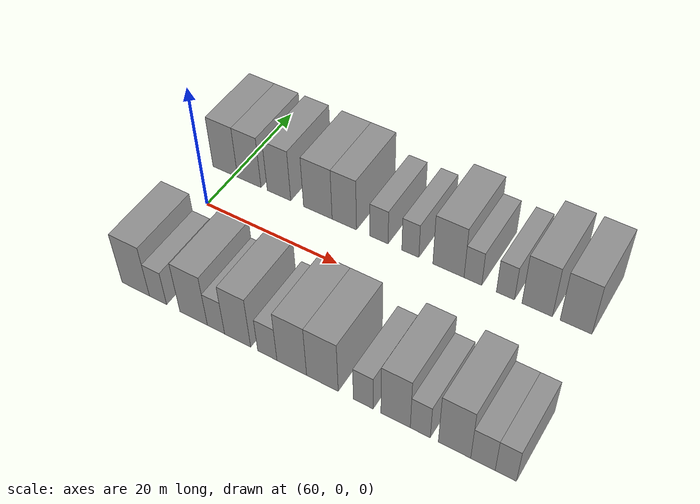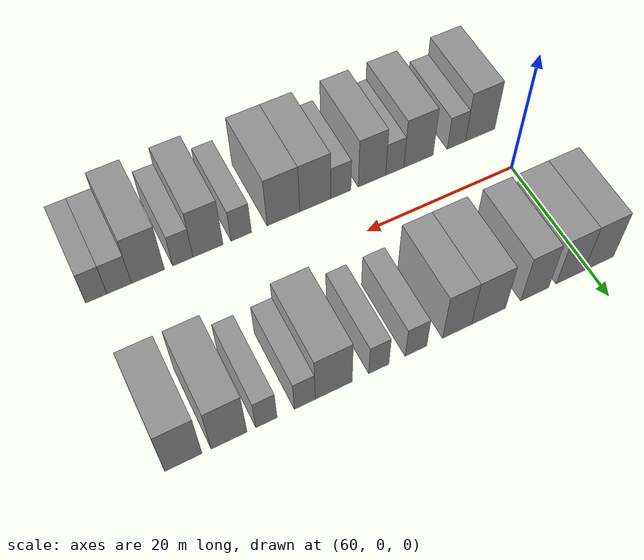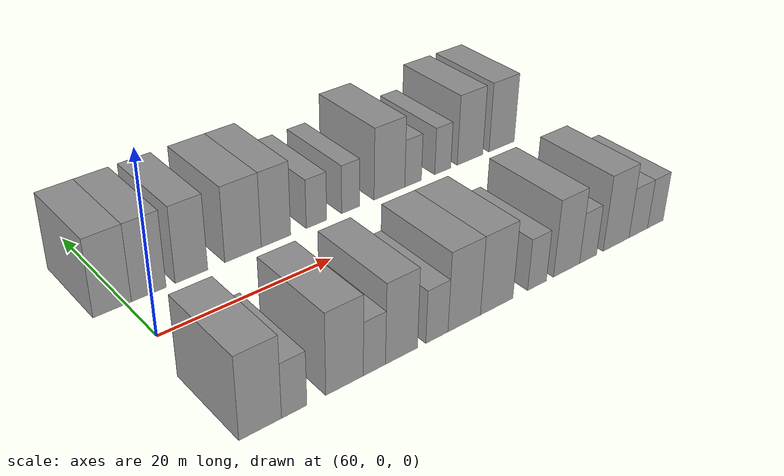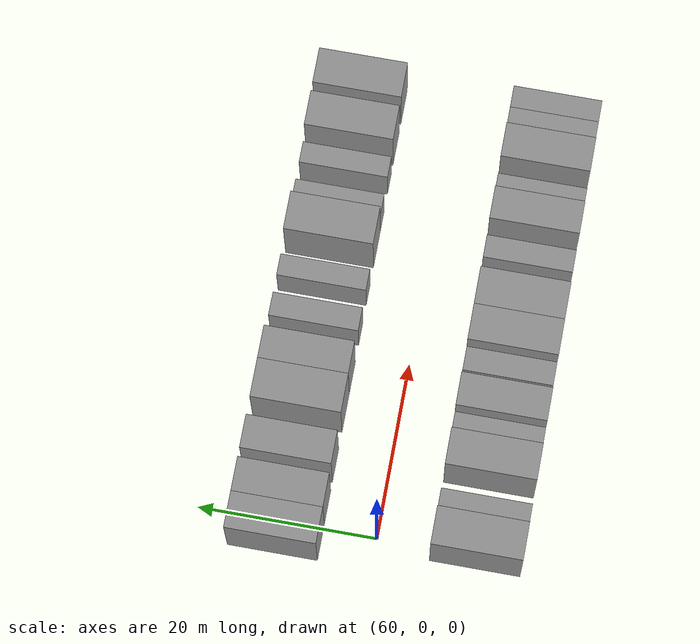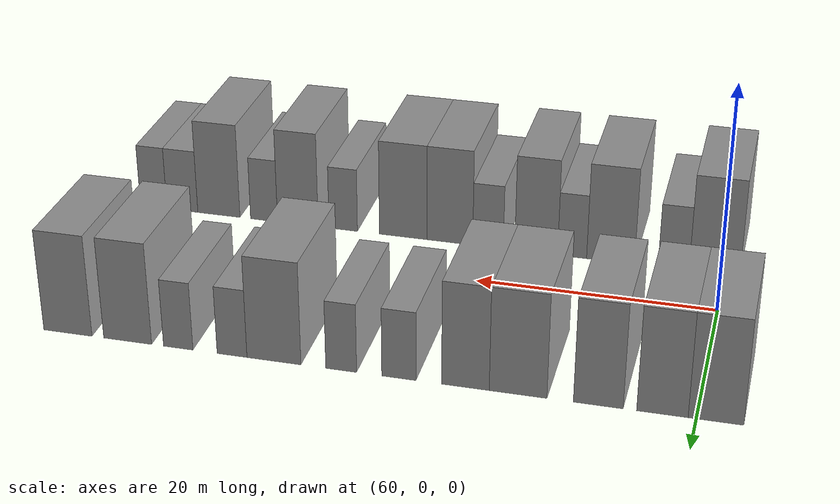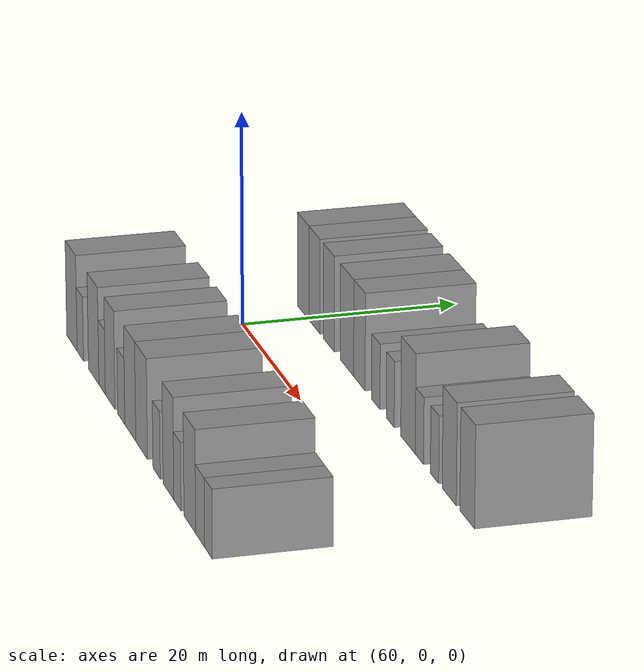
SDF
<sdf version="1.6">
 <world name="default">
  <model name="building_14">
   <static>1</static>
   <pose>58.5556 11.0000 0 0.000000 0.000000 1.570796</pose>
   <link name="link">
    <pose>0 0 4.50 0 0 0</pose>
    <collision name="collision"><geometry><box><size>10.0000 4.0664 9.0000</size></box></geometry></collision>
    <visual name="visual">
     <cast_shadows>0</cast_shadows>
     <geometry><box><size>10.0000 4.0664 9.0000</size></box></geometry>
     <material>
      <script>
       <uri>model://grey_wall/materials/scripts</uri>
       <uri>model://grey_wall/materials/textures</uri>
       <name>vrc/grey_wall</name>
      </script>
     </material>
    </visual>
   </link>
  </model>
  <model name="building_15">
   <static>1</static>
   <pose>62.4908 11.0000 0 0.000000 0.000000 1.570796</pose>
   <link name="link">
    <pose>0 0 4.50 0 0 0</pose>
    <collision name="collision"><geometry><box><size>10.0000 3.8040 9.0000</size></box></geometry></collision>
    <visual name="visual">
     <cast_shadows>0</cast_shadows>
     <geometry><box><size>10.0000 3.8040 9.0000</size></box></geometry>
     <material>
      <script>
       <uri>model://grey_wall/materials/scripts</uri>
       <uri>model://grey_wall/materials/textures</uri>
       <name>vrc/grey_wall</name>
      </script>
     </material>
    </visual>
   </link>
  </model>
  <model name="building_16">
   <static>1</static>
   <pose>67.2608 11.0000 0 0.000000 0.000000 1.570796</pose>
   <link name="link">
    <pose>0 0 4.50 0 0 0</pose>
    <collision name="collision"><geometry><box><size>10.0000 3.7361 9.0000</size></box></geometry></collision>
    <visual name="visual">
     <cast_shadows>0</cast_shadows>
     <geometry><box><size>10.0000 3.7361 9.0000</size></box></geometry>
     <material>
      <script>
       <uri>model://grey_wall/materials/scripts</uri>
       <uri>model://grey_wall/materials/textures</uri>
       <name>vrc/grey_wall</name>
      </script>
     </material>
    </visual>
   </link>
  </model>
  <model name="building_17">
   <static>1</static>
   <pose>73.3346 11.0000 0 0.000000 0.000000 1.570796</pose>
   <link name="link">
    <pose>0 0 4.50 0 0 0</pose>
    <collision name="collision"><geometry><box><size>10.0000 4.4116 9.0000</size></box></geometry></collision>
    <visual name="visual">
     <cast_shadows>0</cast_shadows>
     <geometry><box><size>10.0000 4.4116 9.0000</size></box></geometry>
     <material>
      <script>
       <uri>model://grey_wall/materials/scripts</uri>
       <uri>model://grey_wall/materials/textures</uri>
       <name>vrc/grey_wall</name>
      </script>
     </material>
    </visual>
   </link>
  </model>
  <model name="building_18">
   <static>1</static>
   <pose>77.3870 11.0000 0 0.000000 0.000000 1.570796</pose>
   <link name="link">
    <pose>0 0 4.50 0 0 0</pose>
    <collision name="collision"><geometry><box><size>10.0000 3.6932 9.0000</size></box></geometry></collision>
    <visual name="visual">
     <cast_shadows>0</cast_shadows>
     <geometry><box><size>10.0000 3.6932 9.0000</size></box></geometry>
     <material>
      <script>
       <uri>model://grey_wall/materials/scripts</uri>
       <uri>model://grey_wall/materials/textures</uri>
       <name>vrc/grey_wall</name>
      </script>
     </material>
    </visual>
   </link>
  </model>
  <model name="building_19">
   <static>1</static>
   <pose>82.5772 11.0000 0 0.000000 0.000000 1.570796</pose>
   <link name="link">
    <pose>0 0 3.00 0 0 0</pose>
    <collision name="collision"><geometry><box><size>10.0000 2.6872 6.0000</size></box></geometry></collision>
    <visual name="visual">
     <cast_shadows>0</cast_shadows>
     <geometry><box><size>10.0000 2.6872 6.0000</size></box></geometry>
     <material>
      <script>
       <uri>model://grey_wall/materials/scripts</uri>
       <uri>model://grey_wall/materials/textures</uri>
       <name>vrc/grey_wall</name>
      </script>
     </material>
    </visual>
   </link>
  </model>
  <model name="building_20">
   <static>1</static>
   <pose>87.1497 11.0000 0 0.000000 0.000000 1.570796</pose>
   <link name="link">
    <pose>0 0 3.00 0 0 0</pose>
    <collision name="collision"><geometry><box><size>10.0000 2.4577 6.0000</size></box></geometry></collision>
    <visual name="visual">
     <cast_shadows>0</cast_shadows>
     <geometry><box><size>10.0000 2.4577 6.0000</size></box></geometry>
     <material>
      <script>
       <uri>model://grey_wall/materials/scripts</uri>
       <uri>model://grey_wall/materials/textures</uri>
       <name>vrc/grey_wall</name>
      </script>
     </material>
    </visual>
   </link>
  </model>
  <model name="building_21">
   <static>1</static>
   <pose>92.5695 11.0000 0 0.000000 0.000000 1.570796</pose>
   <link name="link">
    <pose>0 0 4.50 0 0 0</pose>
    <collision name="collision"><geometry><box><size>10.0000 4.3818 9.0000</size></box></geometry></collision>
    <visual name="visual">
     <cast_shadows>0</cast_shadows>
     <geometry><box><size>10.0000 4.3818 9.0000</size></box></geometry>
     <material>
      <script>
       <uri>model://grey_wall/materials/scripts</uri>
       <uri>model://grey_wall/materials/textures</uri>
       <name>vrc/grey_wall</name>
      </script>
     </material>
    </visual>
   </link>
  </model>
  <model name="building_22">
   <static>1</static>
   <pose>95.9836 11.0000 0 0.000000 0.000000 1.570796</pose>
   <link name="link">
    <pose>0 0 3.00 0 0 0</pose>
    <collision name="collision"><geometry><box><size>10.0000 2.4465 6.0000</size></box></geometry></collision>
    <visual name="visual">
     <cast_shadows>0</cast_shadows>
     <geometry><box><size>10.0000 2.4465 6.0000</size></box></geometry>
     <material>
      <script>
       <uri>model://grey_wall/materials/scripts</uri>
       <uri>model://grey_wall/materials/textures</uri>
       <name>vrc/grey_wall</name>
      </script>
     </material>
    </visual>
   </link>
  </model>
  <model name="building_23">
   <static>1</static>
   <pose>100.4280 11.0000 0 0.000000 0.000000 1.570796</pose>
   <link name="link">
    <pose>0 0 3.00 0 0 0</pose>
    <collision name="collision"><geometry><box><size>10.0000 2.4423 6.0000</size></box></geometry></collision>
    <visual name="visual">
     <cast_shadows>0</cast_shadows>
     <geometry><box><size>10.0000 2.4423 6.0000</size></box></geometry>
     <material>
      <script>
       <uri>model://grey_wall/materials/scripts</uri>
       <uri>model://grey_wall/materials/textures</uri>
       <name>vrc/grey_wall</name>
      </script>
     </material>
    </visual>
   </link>
  </model>
  <model name="building_24">
   <static>1</static>
   <pose>104.6647 11.0000 0 0.000000 0.000000 1.570796</pose>
   <link name="link">
    <pose>0 0 4.50 0 0 0</pose>
    <collision name="collision"><geometry><box><size>10.0000 4.0310 9.0000</size></box></geometry></collision>
    <visual name="visual">
     <cast_shadows>0</cast_shadows>
     <geometry><box><size>10.0000 4.0310 9.0000</size></box></geometry>
     <material>
      <script>
       <uri>model://grey_wall/materials/scripts</uri>
       <uri>model://grey_wall/materials/textures</uri>
       <name>vrc/grey_wall</name>
      </script>
     </material>
    </visual>
   </link>
  </model>
  <model name="building_25">
   <static>1</static>
   <pose>109.7369 11.0000 0 0.000000 0.000000 1.570796</pose>
   <link name="link">
    <pose>0 0 4.50 0 0 0</pose>
    <collision name="collision"><geometry><box><size>10.0000 4.1134 9.0000</size></box></geometry></collision>
    <visual name="visual">
     <cast_shadows>0</cast_shadows>
     <geometry><box><size>10.0000 4.1134 9.0000</size></box></geometry>
     <material>
      <script>
       <uri>model://grey_wall/materials/scripts</uri>
       <uri>model://grey_wall/materials/textures</uri>
       <name>vrc/grey_wall</name>
      </script>
     </material>
    </visual>
   </link>
  </model>
  <model name="building_62">
   <static>1</static>
   <pose>60.8336 -11.0000 0 0.000000 0.000000 1.570796</pose>
   <link name="link">
    <pose>0 0 4.50 0 0 0</pose>
    <collision name="collision"><geometry><box><size>10.0000 4.2587 9.0000</size></box></geometry></collision>
    <visual name="visual">
     <cast_shadows>0</cast_shadows>
     <geometry><box><size>10.0000 4.2587 9.0000</size></box></geometry>
     <material>
      <script>
       <uri>model://grey_wall/materials/scripts</uri>
       <uri>model://grey_wall/materials/textures</uri>
       <name>vrc/grey_wall</name>
      </script>
     </material>
    </visual>
   </link>
  </model>
  <model name="building_63">
   <static>1</static>
   <pose>64.2730 -11.0000 0 0.000000 0.000000 1.570796</pose>
   <link name="link">
    <pose>0 0 3.00 0 0 0</pose>
    <collision name="collision"><geometry><box><size>10.0000 2.6202 6.0000</size></box></geometry></collision>
    <visual name="visual">
     <cast_shadows>0</cast_shadows>
     <geometry><box><size>10.0000 2.6202 6.0000</size></box></geometry>
     <material>
      <script>
       <uri>model://grey_wall/materials/scripts</uri>
       <uri>model://grey_wall/materials/textures</uri>
       <name>vrc/grey_wall</name>
      </script>
     </material>
    </visual>
   </link>
  </model>
  <model name="building_64">
   <static>1</static>
   <pose>69.6367 -11.0000 0 0.000000 0.000000 1.570796</pose>
   <link name="link">
    <pose>0 0 4.50 0 0 0</pose>
    <collision name="collision"><geometry><box><size>10.0000 4.1071 9.0000</size></box></geometry></collision>
    <visual name="visual">
     <cast_shadows>0</cast_shadows>
     <geometry><box><size>10.0000 4.1071 9.0000</size></box></geometry>
     <material>
      <script>
       <uri>model://grey_wall/materials/scripts</uri>
       <uri>model://grey_wall/materials/textures</uri>
       <name>vrc/grey_wall</name>
      </script>
     </material>
    </visual>
   </link>
  </model>
  <model name="building_65">
   <static>1</static>
   <pose>72.9438 -11.0000 0 0.000000 0.000000 1.570796</pose>
   <link name="link">
    <pose>0 0 3.00 0 0 0</pose>
    <collision name="collision"><geometry><box><size>10.0000 2.5071 6.0000</size></box></geometry></collision>
    <visual name="visual">
     <cast_shadows>0</cast_shadows>
     <geometry><box><size>10.0000 2.5071 6.0000</size></box></geometry>
     <material>
      <script>
       <uri>model://grey_wall/materials/scripts</uri>
       <uri>model://grey_wall/materials/textures</uri>
       <name>vrc/grey_wall</name>
      </script>
     </material>
    </visual>
   </link>
  </model>
  <model name="building_66">
   <static>1</static>
   <pose>76.0719 -11.0000 0 0.000000 0.000000 1.570796</pose>
   <link name="link">
    <pose>0 0 4.50 0 0 0</pose>
    <collision name="collision"><geometry><box><size>10.0000 3.7492 9.0000</size></box></geometry></collision>
    <visual name="visual">
     <cast_shadows>0</cast_shadows>
     <geometry><box><size>10.0000 3.7492 9.0000</size></box></geometry>
     <material>
      <script>
       <uri>model://grey_wall/materials/scripts</uri>
       <uri>model://grey_wall/materials/textures</uri>
       <name>vrc/grey_wall</name>
      </script>
     </material>
    </visual>
   </link>
  </model>
  <model name="building_67">
   <static>1</static>
   <pose>80.2975 -11.0000 0 0.000000 0.000000 1.570796</pose>
   <link name="link">
    <pose>0 0 3.00 0 0 0</pose>
    <collision name="collision"><geometry><box><size>10.0000 2.7019 6.0000</size></box></geometry></collision>
    <visual name="visual">
     <cast_shadows>0</cast_shadows>
     <geometry><box><size>10.0000 2.7019 6.0000</size></box></geometry>
     <material>
      <script>
       <uri>model://grey_wall/materials/scripts</uri>
       <uri>model://grey_wall/materials/textures</uri>
       <name>vrc/grey_wall</name>
      </script>
     </material>
    </visual>
   </link>
  </model>
  <model name="building_68">
   <static>1</static>
   <pose>83.6960 -11.0000 0 0.000000 0.000000 1.570796</pose>
   <link name="link">
    <pose>0 0 4.50 0 0 0</pose>
    <collision name="collision"><geometry><box><size>10.0000 4.0952 9.0000</size></box></geometry></collision>
    <visual name="visual">
     <cast_shadows>0</cast_shadows>
     <geometry><box><size>10.0000 4.0952 9.0000</size></box></geometry>
     <material>
      <script>
       <uri>model://grey_wall/materials/scripts</uri>
       <uri>model://grey_wall/materials/textures</uri>
       <name>vrc/grey_wall</name>
      </script>
     </material>
    </visual>
   </link>
  </model>
  <model name="building_69">
   <static>1</static>
   <pose>87.8811 -11.0000 0 0.000000 0.000000 1.570796</pose>
   <link name="link">
    <pose>0 0 4.50 0 0 0</pose>
    <collision name="collision"><geometry><box><size>10.0000 4.2751 9.0000</size></box></geometry></collision>
    <visual name="visual">
     <cast_shadows>0</cast_shadows>
     <geometry><box><size>10.0000 4.2751 9.0000</size></box></geometry>
     <material>
      <script>
       <uri>model://grey_wall/materials/scripts</uri>
       <uri>model://grey_wall/materials/textures</uri>
       <name>vrc/grey_wall</name>
      </script>
     </material>
    </visual>
   </link>
  </model>
  <model name="building_70">
   <static>1</static>
   <pose>93.3188 -11.0000 0 0.000000 0.000000 1.570796</pose>
   <link name="link">
    <pose>0 0 3.00 0 0 0</pose>
    <collision name="collision"><geometry><box><size>10.0000 2.6002 6.0000</size></box></geometry></collision>
    <visual name="visual">
     <cast_shadows>0</cast_shadows>
     <geometry><box><size>10.0000 2.6002 6.0000</size></box></geometry>
     <material>
      <script>
       <uri>model://grey_wall/materials/scripts</uri>
       <uri>model://grey_wall/materials/textures</uri>
       <name>vrc/grey_wall</name>
      </script>
     </material>
    </visual>
   </link>
  </model>
  <model name="building_71">
   <static>1</static>
   <pose>97.5014 -11.0000 0 0.000000 0.000000 1.570796</pose>
   <link name="link">
    <pose>0 0 4.50 0 0 0</pose>
    <collision name="collision"><geometry><box><size>10.0000 3.7650 9.0000</size></box></geometry></collision>
    <visual name="visual">
     <cast_shadows>0</cast_shadows>
     <geometry><box><size>10.0000 3.7650 9.0000</size></box></geometry>
     <material>
      <script>
       <uri>model://grey_wall/materials/scripts</uri>
       <uri>model://grey_wall/materials/textures</uri>
       <name>vrc/grey_wall</name>
      </script>
     </material>
    </visual>
   </link>
  </model>
  <model name="building_72">
   <static>1</static>
   <pose>100.6396 -11.0000 0 0.000000 0.000000 1.570796</pose>
   <link name="link">
    <pose>0 0 3.00 0 0 0</pose>
    <collision name="collision"><geometry><box><size>10.0000 2.5114 6.0000</size></box></geometry></collision>
    <visual name="visual">
     <cast_shadows>0</cast_shadows>
     <geometry><box><size>10.0000 2.5114 6.0000</size></box></geometry>
     <material>
      <script>
       <uri>model://grey_wall/materials/scripts</uri>
       <uri>model://grey_wall/materials/textures</uri>
       <name>vrc/grey_wall</name>
      </script>
     </material>
    </visual>
   </link>
  </model>
  <model name="building_73">
   <static>1</static>
   <pose>104.8852 -11.0000 0 0.000000 0.000000 1.570796</pose>
   <link name="link">
    <pose>0 0 4.50 0 0 0</pose>
    <collision name="collision"><geometry><box><size>10.0000 3.9797 9.0000</size></box></geometry></collision>
    <visual name="visual">
     <cast_shadows>0</cast_shadows>
     <geometry><box><size>10.0000 3.9797 9.0000</size></box></geometry>
     <material>
      <script>
       <uri>model://grey_wall/materials/scripts</uri>
       <uri>model://grey_wall/materials/textures</uri>
       <name>vrc/grey_wall</name>
      </script>
     </material>
    </visual>
   </link>
  </model>
  <model name="building_74">
   <static>1</static>
   <pose>108.3488 -11.0000 0 0.000000 0.000000 1.570796</pose>
   <link name="link">
    <pose>0 0 3.00 0 0 0</pose>
    <collision name="collision"><geometry><box><size>10.0000 2.9476 6.0000</size></box></geometry></collision>
    <visual name="visual">
     <cast_shadows>0</cast_shadows>
     <geometry><box><size>10.0000 2.9476 6.0000</size></box></geometry>
     <material>
      <script>
       <uri>model://grey_wall/materials/scripts</uri>
       <uri>model://grey_wall/materials/textures</uri>
       <name>vrc/grey_wall</name>
      </script>
     </material>
    </visual>
   </link>
  </model>
  <model name="building_75">
   <static>1</static>
   <pose>111.0839 -11.0000 0 0.000000 0.000000 1.570796</pose>
   <link name="link">
    <pose>0 0 3.00 0 0 0</pose>
    <collision name="collision"><geometry><box><size>10.0000 2.5226 6.0000</size></box></geometry></collision>
    <visual name="visual">
     <cast_shadows>0</cast_shadows>
     <geometry><box><size>10.0000 2.5226 6.0000</size></box></geometry>
     <material>
      <script>
       <uri>model://grey_wall/materials/scripts</uri>
       <uri>model://grey_wall/materials/textures</uri>
       <name>vrc/grey_wall</name>
      </script>
     </material>
    </visual>
   </link>
  </model>
 </world>
</sdf>
